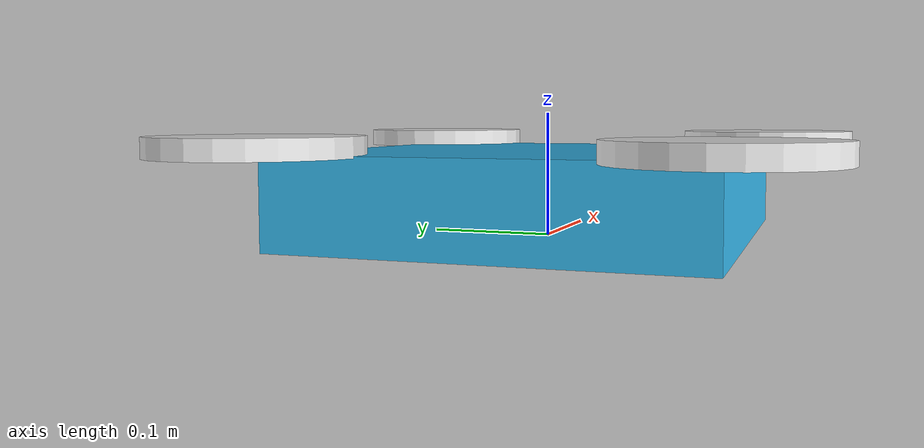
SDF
<?xml version="1.0" ?>
<sdf version="1.9">
  <model name="aether_sl_drone">
    <static>false</static>

    <link name="base_link">
      <pose>0 0 0.035 0 0 0</pose>
      <inertial>
        <mass>0.65</mass>
        <inertia>
          <ixx>0.08</ixx>
          <iyy>0.08</iyy>
          <izz>0.12</izz>
        </inertia>
      </inertial>
      <visual name="base_visual">
        <geometry>
          <box>
            <size>0.325 0.325 0.07</size>
          </box>
        </geometry>
        <material>
          <ambient>0.1 0.6 0.8 1</ambient>
          <diffuse>0.2 0.7 0.9 1</diffuse>
        </material>
      </visual>
      <collision name="base_collision">
        <geometry>
          <box>
            <size>0.325 0.325 0.07</size>
          </box>
        </geometry>
      </collision>

      <!-- 9軸IMU -->
      <sensor name="imu_sensor" type="imu">
        <always_on>true</always_on>
        <update_rate>500</update_rate>
        <pose>0 0 0.035 0 0 0</pose>
        <topic>/imu/data</topic>
        <imu>
          <angular_velocity>
            <x>
              <noise type="gaussian">
                <mean>0.0</mean>
                <stddev>0.00008</stddev>
              </noise>
            </x>
            <y>
              <noise type="gaussian">
                <mean>0.0</mean>
                <stddev>0.00008</stddev>
              </noise>
            </y>
            <z>
              <noise type="gaussian">
                <mean>0.0</mean>
                <stddev>0.00008</stddev>
              </noise>
            </z>
          </angular_velocity>
          <linear_acceleration>
            <x>
              <noise type="gaussian">
                <mean>0.0</mean>
                <stddev>0.004</stddev>
              </noise>
            </x>
            <y>
              <noise type="gaussian">
                <mean>0.0</mean>
                <stddev>0.004</stddev>
              </noise>
            </y>
            <z>
              <noise type="gaussian">
                <mean>0.0</mean>
                <stddev>0.004</stddev>
              </noise>
            </z>
          </linear_acceleration>
        </imu>
      </sensor>

      <!-- GPSセンサ -->
      <sensor name="gps_sensor" type="gps">
        <always_on>true</always_on>
        <update_rate>10</update_rate>
        <pose>0 0 0.035 0 0 0</pose>
        <topic>/gps</topic>
        <gps>
          <horizontal_position_noise>
            <noise type="gaussian">
              <mean>0.0</mean>
              <stddev>0.3</stddev>
            </noise>
          </horizontal_position_noise>
          <vertical_position_noise>
            <noise type="gaussian">
              <mean>0.0</mean>
              <stddev>0.6</stddev>
            </noise>
          </vertical_position_noise>
        </gps>
      </sensor>

      <!-- バロメータ -->
      <sensor name="barometer_sensor" type="altimeter">
        <always_on>true</always_on>
        <update_rate>60</update_rate>
        <pose>0 0 0.035 0 0 0</pose>
        <topic>/baro</topic>
        <altimeter>
          <vertical_position>
            <noise type="gaussian">
              <mean>0.0</mean>
              <stddev>0.08</stddev>
            </noise>
          </vertical_position>
          <vertical_velocity>
            <noise type="gaussian">
              <mean>0.0</mean>
              <stddev>0.04</stddev>
            </noise>
          </vertical_velocity>
        </altimeter>
      </sensor>

      <!-- 磁気センサ -->
      <sensor name="magnetometer_sensor" type="magnetometer">
        <always_on>true</always_on>
        <update_rate>50</update_rate>
        <pose>0 0 0.035 0 0 0</pose>
        <topic>/mag</topic>
        <magnetometer>
          <x>
            <noise type="gaussian">
              <mean>0.0</mean>
              <stddev>0.00004</stddev>
            </noise>
          </x>
          <y>
            <noise type="gaussian">
              <mean>0.0</mean>
              <stddev>0.00004</stddev>
            </noise>
          </y>
          <z>
            <noise type="gaussian">
              <mean>0.0</mean>
              <stddev>0.00004</stddev>
            </noise>
          </z>
        </magnetometer>
      </sensor>
    </link>

    <!-- 4 rotors (6インチプロペラ) -->
    <link name="rotor_1">
      <pose>0.1625 0.1625 0.076 0 0 0</pose>
      <inertial><mass>0.08</mass><inertia><ixx>0.002</ixx><iyy>0.002</iyy><izz>0.002</izz></inertia></inertial>
      <visual name="rotor_1_visual">
        <geometry><cylinder><radius>0.076</radius><length>0.015</length></cylinder></geometry>
        <material>
          <ambient>0.8 0.8 0.8 1</ambient>
          <diffuse>0.9 0.9 0.9 1</diffuse>
        </material>
      </visual>
      <collision name="rotor_1_collision"><geometry><cylinder><radius>0.076</radius><length>0.015</length></cylinder></geometry></collision>
    </link>
    <joint name="rotor_1_joint" type="fixed">
      <parent>base_link</parent><child>rotor_1</child>
    </joint>

    <link name="rotor_2">
      <pose>-0.1625 0.1625 0.076 0 0 0</pose>
      <inertial><mass>0.08</mass><inertia><ixx>0.002</ixx><iyy>0.002</iyy><izz>0.002</izz></inertia></inertial>
      <visual name="rotor_2_visual">
        <geometry><cylinder><radius>0.076</radius><length>0.015</length></cylinder></geometry>
        <material>
          <ambient>0.8 0.8 0.8 1</ambient>
          <diffuse>0.9 0.9 0.9 1</diffuse>
        </material>
      </visual>
      <collision name="rotor_2_collision"><geometry><cylinder><radius>0.076</radius><length>0.015</length></cylinder></geometry></collision>
    </link>
    <joint name="rotor_2_joint" type="fixed">
      <parent>base_link</parent><child>rotor_2</child>
    </joint>

    <link name="rotor_3">
      <pose>-0.1625 -0.1625 0.076 0 0 0</pose>
      <inertial><mass>0.08</mass><inertia><ixx>0.002</ixx><iyy>0.002</iyy><izz>0.002</izz></inertia></inertial>
      <visual name="rotor_3_visual">
        <geometry><cylinder><radius>0.076</radius><length>0.015</length></cylinder></geometry>
        <material>
          <ambient>0.8 0.8 0.8 1</ambient>
          <diffuse>0.9 0.9 0.9 1</diffuse>
        </material>
      </visual>
      <collision name="rotor_3_collision"><geometry><cylinder><radius>0.076</radius><length>0.015</length></cylinder></geometry></collision>
    </link>
    <joint name="rotor_3_joint" type="fixed">
      <parent>base_link</parent><child>rotor_3</child>
    </joint>

    <link name="rotor_4">
      <pose>0.1625 -0.1625 0.076 0 0 0</pose>
      <inertial><mass>0.08</mass><inertia><ixx>0.002</ixx><iyy>0.002</iyy><izz>0.002</izz></inertia></inertial>
      <visual name="rotor_4_visual">
        <geometry><cylinder><radius>0.076</radius><length>0.015</length></cylinder></geometry>
        <material>
          <ambient>0.8 0.8 0.8 1</ambient>
          <diffuse>0.9 0.9 0.9 1</diffuse>
        </material>
      </visual>
      <collision name="rotor_4_collision"><geometry><cylinder><radius>0.076</radius><length>0.015</length></cylinder></geometry></collision>
    </link>
    <joint name="rotor_4_joint" type="fixed">
      <parent>base_link</parent><child>rotor_4</child>
    </joint>

    <!-- 姿勢制御・推力モデルプラグイン -->
    <plugin name="multicopter_motor_model" filename="libMulticopterMotorModel.so">
      <motor>
        <link_name>rotor_1</link_name>
        <direction>ccw</direction>
        <thrust_constant>1.6</thrust_constant>
        <torque_constant>0.03</torque_constant>
      </motor>
      <motor>
        <link_name>rotor_2</link_name>
        <direction>cw</direction>
        <thrust_constant>1.6</thrust_constant>
        <torque_constant>0.03</torque_constant>
      </motor>
      <motor>
        <link_name>rotor_3</link_name>
        <direction>ccw</direction>
        <thrust_constant>1.6</thrust_constant>
        <torque_constant>0.03</torque_constant>
      </motor>
      <motor>
        <link_name>rotor_4</link_name>
        <direction>cw</direction>
        <thrust_constant>1.6</thrust_constant>
        <torque_constant>0.03</torque_constant>
      </motor>
      <control>
        <enable>true</enable>
      </control>
    </plugin>
  </model>
</sdf>
